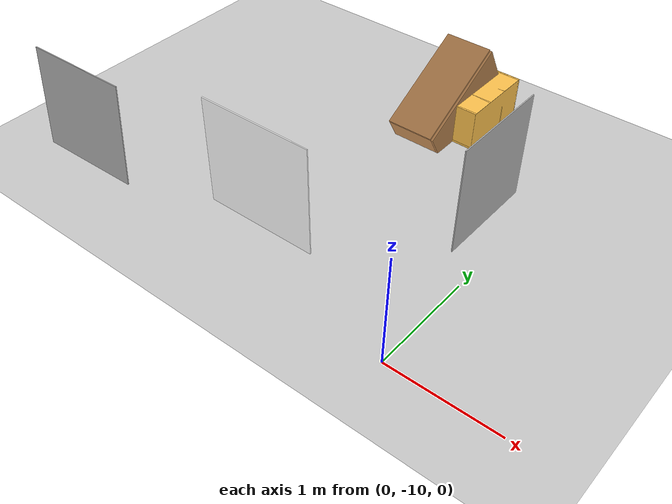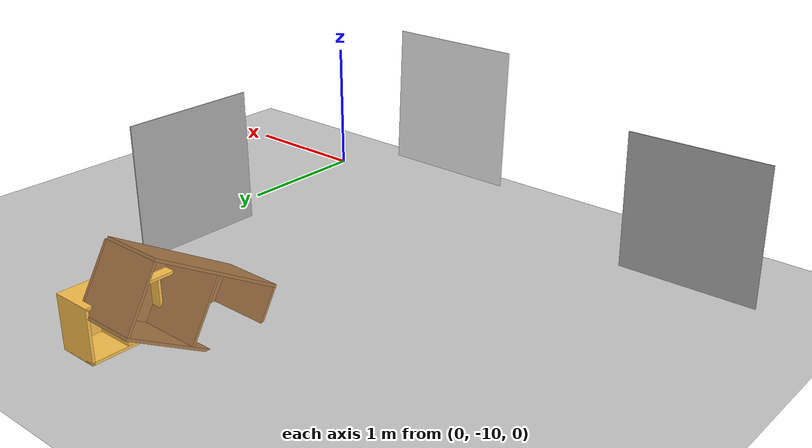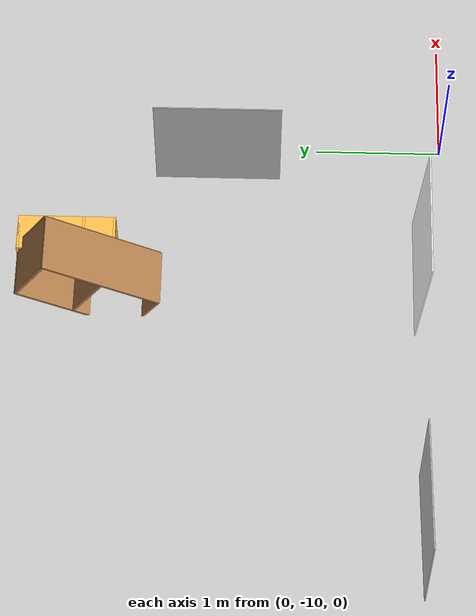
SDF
<sdf version="1.6">
 <world name="default">
  <model name="ground_plane">
   <static>1</static>
   <link name="link">
    <collision name="collision">
     <geometry><plane><normal>0 0 1</normal><size>100 100</size></plane></geometry>
     <surface><friction><ode><mu>100</mu><mu2>50</mu2></ode></friction></surface>
    </collision>
    <visual name="visual">
     <cast_shadows>0</cast_shadows>
     <geometry><plane><normal>0 0 1</normal><size>100 100</size></plane></geometry>
     <material>
      <script><uri>file://media/materials/scripts/gazebo.material</uri><name>Gazebo/Grey</name></script>
     </material>
    </visual>
   </link>
  </model>
  <model name="Wall_Cabinet_15x30_0">
   <pose>-1.03531 -7.03812 0 0 -0 0</pose>
   <link name="Wall_0">
    <pose>0 0.374 0.192 0 -0 0</pose>
    <inertial>
     <mass>0.9882</mass>
     <inertia><ixx>0.0072</ixx><iyy>0.0194</iyy><izz>0.0122</izz><ixy>0</ixy><ixz>0</ixz><iyz>0</iyz></inertia>
    </inertial>
    <collision name="Wall_0_Collision"><geometry><box><size>0.296 0.02 0.384</size></box></geometry></collision>
    <visual name="Wall_0_Visual">
     <geometry><box><size>0.296 0.02 0.384</size></box></geometry>
     <material>
      <script><uri>file://media/materials/scripts/gazebo.material</uri><name>Gazebo/Grey</name></script>
      <ambient>1 0.764706 0.305882 1</ambient>
     </material>
    </visual>
   </link>
   <joint name="0_2" type="fixed">
    <pose>0 0 0.192 0 -0 0</pose>
    <parent>Wall_2</parent>
    <child>Wall_0</child>
    <axis>
     <xyz>0 0 1</xyz>
     <use_parent_model_frame>0</use_parent_model_frame>
     <limit><lower>-1e+16</lower><upper>1e+16</upper></limit>
    </axis>
   </joint>
   <joint name="0_4" type="fixed">
    <pose>0 0 -0.192 0 -0 0</pose>
    <parent>Wall_4</parent>
    <child>Wall_0</child>
    <axis>
     <xyz>0 0 1</xyz>
     <use_parent_model_frame>0</use_parent_model_frame>
     <limit><lower>-1e+16</lower><upper>1e+16</upper></limit>
    </axis>
   </joint>
   <joint name="0_15" type="fixed">
    <pose>0.148 0 0 0 -0 0</pose>
    <parent>Wall_15</parent>
    <child>Wall_0</child>
    <axis>
     <xyz>1 0 0</xyz>
     <use_parent_model_frame>0</use_parent_model_frame>
     <limit><lower>-1e+16</lower><upper>1e+16</upper></limit>
    </axis>
   </joint>
   <link name="Wall_11">
    <pose>0 -0.132768 0.192 0 -0 0</pose>
    <inertial>
     <mass>0.9882</mass>
     <inertia><ixx>0.0072</ixx><iyy>0.0194</iyy><izz>0.0122</izz><ixy>0</ixy><ixz>0</ixz><iyz>0</iyz></inertia>
    </inertial>
    <collision name="Wall_11_Collision"><geometry><box><size>0.296 0.02 0.384</size></box></geometry></collision>
    <visual name="Wall_11_Visual">
     <geometry><box><size>0.296 0.02 0.384</size></box></geometry>
     <material>
      <script><uri>file://media/materials/scripts/gazebo.material</uri><name>Gazebo/Grey</name></script>
      <ambient>1 0.764706 0.305882 1</ambient>
     </material>
    </visual>
   </link>
   <joint name="11_2" type="fixed">
    <pose>0 0 0.192 0 -0 0</pose>
    <parent>Wall_2</parent>
    <child>Wall_11</child>
    <axis>
     <xyz>0 0 1</xyz>
     <use_parent_model_frame>0</use_parent_model_frame>
     <limit><lower>-1e+16</lower><upper>1e+16</upper></limit>
    </axis>
   </joint>
   <joint name="11_4" type="fixed">
    <pose>0 0 -0.192 0 -0 0</pose>
    <parent>Wall_4</parent>
    <child>Wall_11</child>
    <axis>
     <xyz>0 0 1</xyz>
     <use_parent_model_frame>0</use_parent_model_frame>
     <limit><lower>-1e+16</lower><upper>1e+16</upper></limit>
    </axis>
   </joint>
   <joint name="11_15" type="fixed">
    <pose>0.148 0 0 0 -0 0</pose>
    <parent>Wall_15</parent>
    <child>Wall_11</child>
    <axis>
     <xyz>1 0 0</xyz>
     <use_parent_model_frame>0</use_parent_model_frame>
     <limit><lower>-1e+16</lower><upper>1e+16</upper></limit>
    </axis>
   </joint>
   <link name="Wall_15">
    <pose>0.138 0 0.19 0 -0 0</pose>
    <inertial>
     <mass>2.5241</mass>
     <inertia><ixx>0.0305</ixx><iyy>0.1229</iyy><izz>0.1532</izz><ixy>0</ixy><ixz>0</ixz><iyz>0</iyz></inertia>
    </inertial>
    <collision name="Wall_15_Collision"><geometry><box><size>0.02 0.764 0.38</size></box></geometry></collision>
    <visual name="Wall_15_Visual">
     <geometry><box><size>0.02 0.764 0.38</size></box></geometry>
     <material>
      <script><uri>file://media/materials/scripts/gazebo.material</uri><name>Gazebo/Grey</name></script>
      <ambient>1 0.764706 0.305882 1</ambient>
     </material>
    </visual>
   </link>
   <joint name="15_2" type="fixed">
    <pose>0 0 0.19 0 -0 0</pose>
    <parent>Wall_2</parent>
    <child>Wall_15</child>
    <axis>
     <xyz>0 0 1</xyz>
     <use_parent_model_frame>0</use_parent_model_frame>
     <limit><lower>-1e+16</lower><upper>1e+16</upper></limit>
    </axis>
   </joint>
   <joint name="15_4" type="fixed">
    <pose>0 0 -0.19 0 -0 0</pose>
    <parent>Wall_4</parent>
    <child>Wall_15</child>
    <axis>
     <xyz>0 0 1</xyz>
     <use_parent_model_frame>0</use_parent_model_frame>
     <limit><lower>-1e+16</lower><upper>1e+16</upper></limit>
    </axis>
   </joint>
   <link name="Wall_2">
    <pose>0 0 0.374 0 -0 0</pose>
    <inertial>
     <mass>1.9765</mass>
     <inertia><ixx>0.0145</ixx><iyy>0.1116</iyy><izz>0.0972</izz><ixy>0</ixy><ixz>0</ixz><iyz>0</iyz></inertia>
    </inertial>
    <collision name="Wall_2_Collision"><geometry><box><size>0.296 0.768 0.02</size></box></geometry></collision>
    <visual name="Wall_2_Visual">
     <geometry><box><size>0.296 0.768 0.02</size></box></geometry>
     <material>
      <script><uri>file://media/materials/scripts/gazebo.material</uri><name>Gazebo/Grey</name></script>
      <ambient>1 0.764706 0.305882 1</ambient>
     </material>
    </visual>
   </link>
   <link name="Wall_4">
    <pose>0 0 0.01 0 -0 0</pose>
    <inertial>
     <mass>1.9765</mass>
     <inertia><ixx>0.0145</ixx><iyy>0.1116</iyy><izz>0.0972</izz><ixy>0</ixy><ixz>0</ixz><iyz>0</iyz></inertia>
    </inertial>
    <collision name="Wall_4_Collision"><geometry><box><size>0.296 0.768 0.02</size></box></geometry></collision>
    <visual name="Wall_4_Visual">
     <geometry><box><size>0.296 0.768 0.02</size></box></geometry>
     <material>
      <script><uri>file://media/materials/scripts/gazebo.material</uri><name>Gazebo/Grey</name></script>
      <ambient>1 0.764706 0.305882 1</ambient>
     </material>
    </visual>
    <pose>-0.181124 0 0 0 0 -1.5708</pose>
   </link>
   <link name="Wall_6">
    <pose>0 -0.374 0.192 0 -0 0</pose>
    <inertial>
     <mass>0.9882</mass>
     <inertia><ixx>0.0072</ixx><iyy>0.0194</iyy><izz>0.0122</izz><ixy>0</ixy><ixz>0</ixz><iyz>0</iyz></inertia>
    </inertial>
    <collision name="Wall_6_Collision"><geometry><box><size>0.296 0.02 0.384</size></box></geometry></collision>
    <visual name="Wall_6_Visual">
     <geometry><box><size>0.296 0.02 0.384</size></box></geometry>
     <material>
      <script><uri>file://media/materials/scripts/gazebo.material</uri><name>Gazebo/Grey</name></script>
      <ambient>1 0.764706 0.305882 1</ambient>
     </material>
    </visual>
   </link>
   <joint name="6_2" type="fixed">
    <pose>0 0 0.192 0 -0 0</pose>
    <parent>Wall_2</parent>
    <child>Wall_6</child>
    <axis>
     <xyz>0 0 1</xyz>
     <use_parent_model_frame>0</use_parent_model_frame>
     <limit><lower>-1e+16</lower><upper>1e+16</upper></limit>
    </axis>
   </joint>
   <joint name="6_4" type="fixed">
    <pose>0 0 -0.192 0 -0 0</pose>
    <parent>Wall_4</parent>
    <child>Wall_6</child>
    <axis>
     <xyz>0 0 1</xyz>
     <use_parent_model_frame>0</use_parent_model_frame>
     <limit><lower>-1e+16</lower><upper>1e+16</upper></limit>
    </axis>
   </joint>
   <joint name="6_15" type="fixed">
    <pose>0.148 0 0 0 -0 0</pose>
    <parent>Wall_15</parent>
    <child>Wall_6</child>
    <axis>
     <xyz>1 0 0</xyz>
     <use_parent_model_frame>0</use_parent_model_frame>
     <limit><lower>-1e+16</lower><upper>1e+16</upper></limit>
    </axis>
   </joint>
   <link name="Wall_8">
    <pose>0 0.120833 0.192 0 -0 0</pose>
    <inertial>
     <mass>0.9882</mass>
     <inertia><ixx>0.0072</ixx><iyy>0.0194</iyy><izz>0.0122</izz><ixy>0</ixy><ixz>0</ixz><iyz>0</iyz></inertia>
    </inertial>
    <collision name="Wall_8_Collision"><geometry><box><size>0.296 0.02 0.384</size></box></geometry></collision>
    <visual name="Wall_8_Visual">
     <geometry><box><size>0.296 0.02 0.384</size></box></geometry>
     <material>
      <script><uri>file://media/materials/scripts/gazebo.material</uri><name>Gazebo/Grey</name></script>
      <ambient>1 0.764706 0.305882 1</ambient>
     </material>
    </visual>
   </link>
   <joint name="8_2" type="fixed">
    <pose>0 0 0.192 0 -0 0</pose>
    <parent>Wall_2</parent>
    <child>Wall_8</child>
    <axis>
     <xyz>0 0 1</xyz>
     <use_parent_model_frame>0</use_parent_model_frame>
     <limit><lower>-1e+16</lower><upper>1e+16</upper></limit>
    </axis>
   </joint>
   <joint name="8_4" type="fixed">
    <pose>0 0 -0.192 0 -0 0</pose>
    <parent>Wall_4</parent>
    <child>Wall_8</child>
    <axis>
     <xyz>0 0 1</xyz>
     <use_parent_model_frame>0</use_parent_model_frame>
     <limit><lower>-1e+16</lower><upper>1e+16</upper></limit>
    </axis>
   </joint>
   <joint name="8_15" type="fixed">
    <pose>0.148 0 0 0 -0 0</pose>
    <parent>Wall_15</parent>
    <child>Wall_8</child>
    <axis>
     <xyz>1 0 0</xyz>
     <use_parent_model_frame>0</use_parent_model_frame>
     <limit><lower>-1e+16</lower><upper>1e+16</upper></limit>
    </axis>
   </joint>
   <static>1</static>
  </model>
  <model name="cabinet">
   <static>1</static>
   <link name="cabinet_bottom_plate">
    <inertial>
     <pose>0 0 -1 0 -0 0</pose>
     <inertia><ixx>2.05</ixx><ixy>0</ixy><ixz>0</ixz><iyy>2.05</iyy><iyz>0</iyz><izz>2.05</izz></inertia>
     <mass>25</mass>
    </inertial>
    <collision name="cabinet_bottom_plate_geom">
     <pose>0 0 0.01 0 -0 0</pose>
     <geometry><box><size>0.45 0.45 0.02</size></box></geometry>
    </collision>
    <visual name="cabinet_bottom_plate_geom_visual">
     <pose>0 0 0.01 0 -0 0</pose>
     <geometry><box><size>0.45 0.45 0.02</size></box></geometry>
     <material>
      <script><uri>file://media/materials/scripts/gazebo.material</uri><name>Gazebo/Wood</name></script>
     </material>
    </visual>
    <collision name="cabinet_bottom_plate_geom_cabinet_back_plate">
     <pose>0.235 0 0.51 0 -0 0</pose>
     <geometry><box><size>0.02 0.45 1.02</size></box></geometry>
    </collision>
    <visual name="cabinet_bottom_plate_geom_cabinet_back_plate_visual">
     <pose>0.235 0 0.51 0 -0 0</pose>
     <geometry><box><size>0.02 0.45 1.02</size></box></geometry>
     <material>
      <script><uri>file://media/materials/scripts/gazebo.material</uri><name>Gazebo/Wood</name></script>
     </material>
    </visual>
    <collision name="cabinet_bottom_plate_geom_cabinet_left_plate">
     <pose>0 0.235 0.51 0 -0 0</pose>
     <geometry><box><size>0.45 0.02 1.02</size></box></geometry>
    </collision>
    <visual name="cabinet_bottom_plate_geom_cabinet_left_plate_visual">
     <pose>0 0.235 0.51 0 -0 0</pose>
     <geometry><box><size>0.45 0.02 1.02</size></box></geometry>
     <material>
      <script><uri>file://media/materials/scripts/gazebo.material</uri><name>Gazebo/Wood</name></script>
     </material>
    </visual>
    <collision name="cabinet_bottom_plate_geom_cabinet_middle_plate">
     <pose>0 0 0.51 0 -0 0</pose>
     <geometry><box><size>0.45 0.45 0.02</size></box></geometry>
    </collision>
    <visual name="cabinet_bottom_plate_geom_cabinet_middle_plate_visual">
     <pose>0 0 0.51 0 -0 0</pose>
     <geometry><box><size>0.45 0.45 0.02</size></box></geometry>
     <material>
      <script><uri>file://media/materials/scripts/gazebo.material</uri><name>Gazebo/Wood</name></script>
     </material>
    </visual>
    <collision name="cabinet_bottom_plate_geom_cabinet_right_plate">
     <pose>0 -0.235 0.51 0 -0 0</pose>
     <geometry><box><size>0.45 0.02 1.02</size></box></geometry>
    </collision>
    <visual name="cabinet_bottom_plate_geom_cabinet_right_plate_visual">
     <pose>0 -0.235 0.51 0 -0 0</pose>
     <geometry><box><size>0.45 0.02 1.02</size></box></geometry>
     <material>
      <script><uri>file://media/materials/scripts/gazebo.material</uri><name>Gazebo/Wood</name></script>
     </material>
    </visual>
    <collision name="cabinet_bottom_plate_geom_cabinet_top_plate">
     <pose>0 0 1.01 0 -0 0</pose>
     <geometry><box><size>0.45 0.45 0.02</size></box></geometry>
    </collision>
    <visual name="cabinet_bottom_plate_geom_cabinet_top_plate_visual">
     <pose>0 0 1.01 0 -0 0</pose>
     <geometry><box><size>0.45 0.45 0.02</size></box></geometry>
     <material>
      <script><uri>file://media/materials/scripts/gazebo.material</uri><name>Gazebo/Wood</name></script>
     </material>
    </visual>
   </link>
   <pose>-1.32888 -7.66183 0 -1.03395 0 0</pose>
  </model>
  <model name="electric_plug_1_2">
   <link name="link_0">
    <pose>4e-06 0 0 0 -0 0</pose>
    <inertial>
     <mass>1</mass>
     <inertia>
      <ixx>0.166667</ixx>
      <ixy>0</ixy>
      <ixz>0</ixz>
      <iyy>0.166667</iyy>
      <iyz>0</iyz>
      <izz>0.166667</izz>
     </inertia>
    </inertial>
    <visual name="visual">
     <geometry><box><size>0.01 1 1</size></box></geometry>
     <material>
      <lighting>1</lighting>
      <script>
       <uri>model://electric_plug_4_S/materials/scripts</uri>
       <uri>model://electric_plug_4_S/materials/textures</uri>
       <name>Electric/Plug4S</name>
      </script>
      <ambient>1 1 1 1</ambient>
      <diffuse>1 1 1 1</diffuse>
      <specular>0.01 0.01 0.01 1</specular>
      <emissive>1 1 1 1</emissive>
     </material>
     <cast_shadows>0</cast_shadows>
    </visual>
    <collision name="collision">
     <geometry><box><size>0.01 1 1</size></box></geometry>
     <surface>
      <friction>
       <ode><mu>1</mu><mu2>1</mu2><fdir1>0 0 0</fdir1><slip1>0</slip1><slip2>0</slip2></ode>
       <torsional>
        <coefficient>1</coefficient>
        <patch_radius>0</patch_radius>
        <surface_radius>0</surface_radius>
        <use_patch_radius>1</use_patch_radius>
        <ode><slip>0</slip></ode>
       </torsional>
      </friction>
      <bounce><restitution_coefficient>0</restitution_coefficient><threshold>1e+06</threshold></bounce>
      <contact>
       <collide_without_contact>0</collide_without_contact>
       <collide_without_contact_bitmask>1</collide_without_contact_bitmask>
       <collide_bitmask>1</collide_bitmask>
       <ode>
        <soft_cfm>0</soft_cfm>
        <soft_erp>0.2</soft_erp>
        <kp>1e+13</kp>
        <kd>1</kd>
        <max_vel>0.01</max_vel>
        <min_depth>0</min_depth>
       </ode>
       <bullet>
        <split_impulse>1</split_impulse>
        <split_impulse_penetration_threshold>-0.01</split_impulse_penetration_threshold>
        <soft_cfm>0</soft_cfm>
        <soft_erp>0.2</soft_erp>
        <kp>1e+13</kp>
        <kd>1</kd>
       </bullet>
      </contact>
     </surface>
    </collision>
   </link>
   <static>0</static>
   <pose>-1.36538 -9.77886 0.845884 0 0.060598 -1.5708</pose>
  </model>
  <model name="electric_plug_4_M_0">
   <link name="link_0">
    <pose>4e-06 0 0 0 -0 0</pose>
    <inertial>
     <mass>1</mass>
     <inertia>
      <ixx>0.166667</ixx>
      <ixy>0</ixy>
      <ixz>0</ixz>
      <iyy>0.166667</iyy>
      <iyz>0</iyz>
      <izz>0.166667</izz>
     </inertia>
    </inertial>
    <visual name="visual">
     <geometry><box><size>0.01 1 1</size></box></geometry>
     <material>
      <lighting>1</lighting>
      <script>
       <uri>model://electric_plug_4_M/materials/scripts</uri>
       <uri>model://electric_plug_4_M/materials/textures</uri>
       <name>Electric/Plug4M</name>
      </script>
      <ambient>0.3 0.3 0.3 1</ambient>
      <diffuse>0.7 0.7 0.7 1</diffuse>
      <specular>0.01 0.01 0.01 1</specular>
      <emissive>1 1 1 1</emissive>
     </material>
     <cast_shadows>0</cast_shadows>
    </visual>
    <collision name="collision">
     <geometry><box><size>0.01 1 1</size></box></geometry>
     <surface>
      <friction>
       <ode><mu>1</mu><mu2>1</mu2><fdir1>0 0 0</fdir1><slip1>0</slip1><slip2>0</slip2></ode>
       <torsional>
        <coefficient>1</coefficient>
        <patch_radius>0</patch_radius>
        <surface_radius>0</surface_radius>
        <use_patch_radius>1</use_patch_radius>
        <ode><slip>0</slip></ode>
       </torsional>
      </friction>
      <bounce><restitution_coefficient>0</restitution_coefficient><threshold>1e+06</threshold></bounce>
      <contact>
       <collide_without_contact>0</collide_without_contact>
       <collide_without_contact_bitmask>1</collide_without_contact_bitmask>
       <collide_bitmask>1</collide_bitmask>
       <ode>
        <soft_cfm>0</soft_cfm>
        <soft_erp>0.2</soft_erp>
        <kp>1e+13</kp>
        <kd>1</kd>
        <max_vel>0.01</max_vel>
        <min_depth>0</min_depth>
       </ode>
       <bullet>
        <split_impulse>1</split_impulse>
        <split_impulse_penetration_threshold>-0.01</split_impulse_penetration_threshold>
        <soft_cfm>0</soft_cfm>
        <soft_erp>0.2</soft_erp>
        <kp>1e+13</kp>
        <kd>1</kd>
       </bullet>
      </contact>
     </surface>
    </collision>
   </link>
   <static>0</static>
   <pose>-0.261021 -8.2024 0.500013 -3e-06 -0.0026 -0</pose>
  </model>
  <model name="electric_plug_3_N">
   <link name="link_0">
    <pose>4e-06 0 0 0 -0 0</pose>
    <inertial>
     <mass>1</mass>
     <inertia>
      <ixx>0.166667</ixx>
      <ixy>0</ixy>
      <ixz>0</ixz>
      <iyy>0.166667</iyy>
      <iyz>0</iyz>
      <izz>0.166667</izz>
     </inertia>
    </inertial>
    <visual name="visual">
     <geometry><box><size>0.01 1 1</size></box></geometry>
     <material>
      <lighting>1</lighting>
      <script>
       <uri>model://electric_plug_3_N/materials/scripts</uri>
       <uri>model://electric_plug_3_N/materials/textures</uri>
       <name>Electric/Plug3N</name>
      </script>
      <ambient>0.3 0.3 0.3 1</ambient>
      <diffuse>0.7 0.7 0.7 1</diffuse>
      <specular>0.01 0.01 0.01 1</specular>
      <emissive>1 1 1 1</emissive>
     </material>
    </visual>
    <collision name="collision">
     <geometry><box><size>0.01 1 1</size></box></geometry>
     <surface>
      <friction>
       <ode><mu>1</mu><mu2>1</mu2><fdir1>0 0 0</fdir1><slip1>0</slip1><slip2>0</slip2></ode>
       <torsional>
        <coefficient>1</coefficient>
        <patch_radius>0</patch_radius>
        <surface_radius>0</surface_radius>
        <use_patch_radius>1</use_patch_radius>
        <ode><slip>0</slip></ode>
       </torsional>
      </friction>
      <bounce><restitution_coefficient>0</restitution_coefficient><threshold>1e+06</threshold></bounce>
      <contact>
       <collide_without_contact>0</collide_without_contact>
       <collide_without_contact_bitmask>1</collide_without_contact_bitmask>
       <collide_bitmask>1</collide_bitmask>
       <ode>
        <soft_cfm>0</soft_cfm>
        <soft_erp>0.2</soft_erp>
        <kp>1e+13</kp>
        <kd>1</kd>
        <max_vel>0.01</max_vel>
        <min_depth>0</min_depth>
       </ode>
       <bullet>
        <split_impulse>1</split_impulse>
        <split_impulse_penetration_threshold>-0.01</split_impulse_penetration_threshold>
        <soft_cfm>0</soft_cfm>
        <soft_erp>0.2</soft_erp>
        <kp>1e+13</kp>
        <kd>1</kd>
       </bullet>
      </contact>
     </surface>
    </collision>
   </link>
   <static>0</static>
   <pose>-3.37438 -9.80413 0.500021 0 0.005795 1.5906</pose>
  </model>
 </world>
</sdf>
